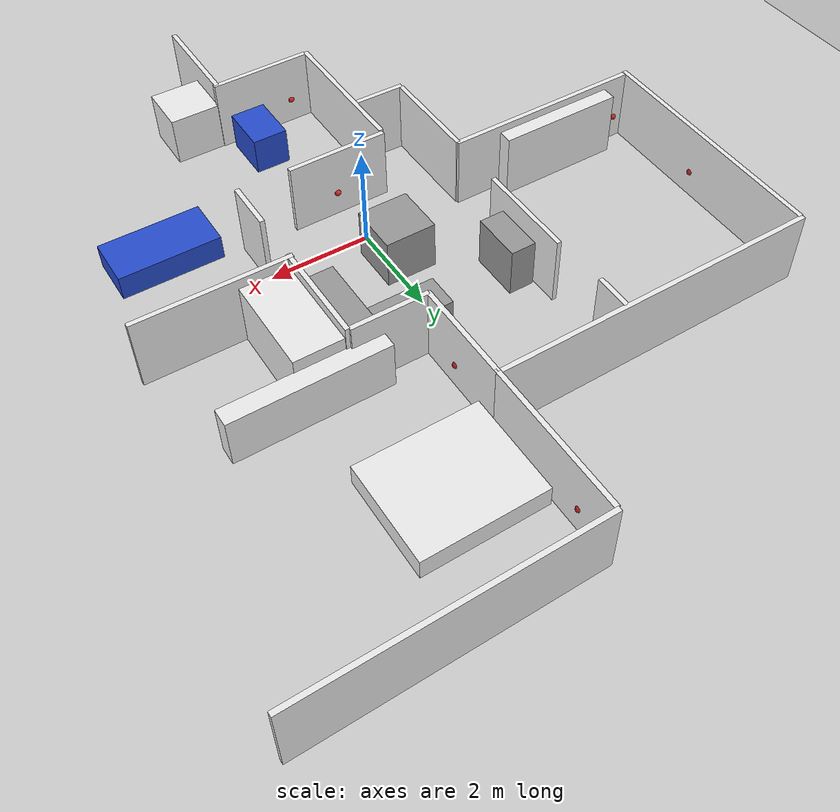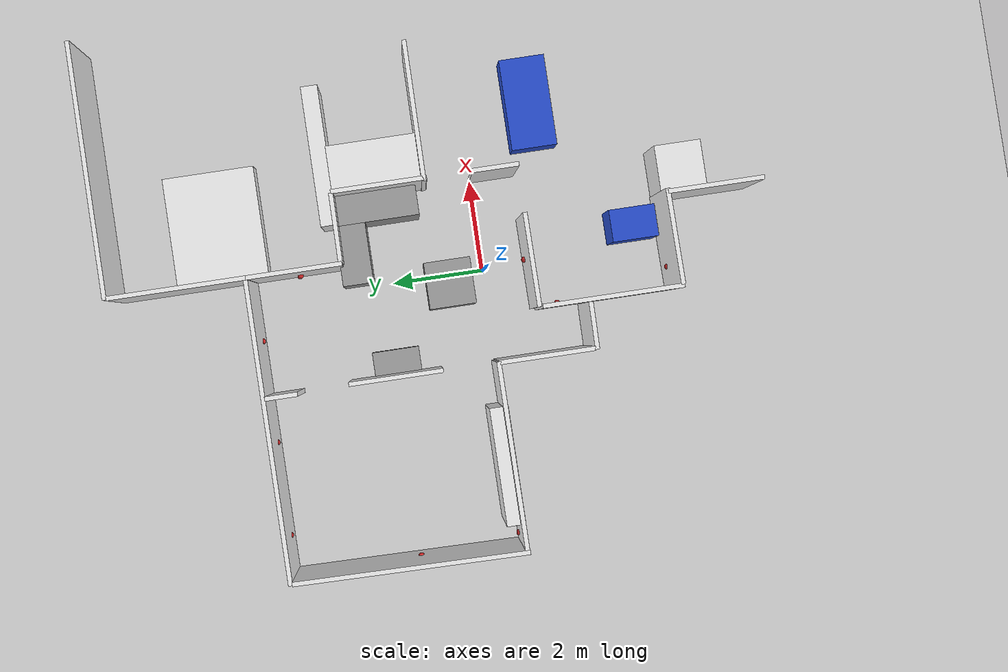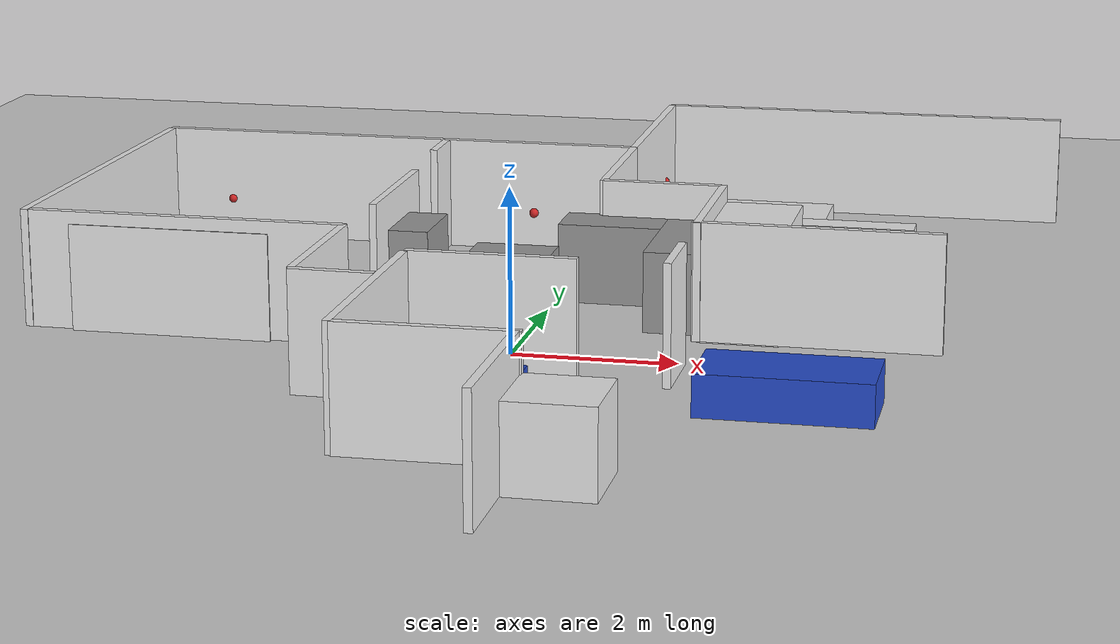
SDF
<sdf version="1.6">
 <world name="default">
  <model name="ground_plane">
   <static>1</static>
   <link name="link">
    <collision name="collision">
     <geometry><plane><normal>0 0 1</normal><size>100 100</size></plane></geometry>
     <surface>
      <contact><collide_bitmask>65535</collide_bitmask></contact>
      <friction><ode><mu>100</mu><mu2>50</mu2></ode></friction>
     </surface>
    </collision>
    <visual name="visual">
     <cast_shadows>0</cast_shadows>
     <geometry><plane><normal>0 0 1</normal><size>100 100</size></plane></geometry>
     <material>
      <script><uri>file://media/materials/scripts/gazebo.material</uri><name>Gazebo/Grey</name></script>
     </material>
    </visual>
   </link>
  </model>
  <model name="unit_box">
   <static>1</static>
   <pose>-2.01274 2.22224 0.725943 0 -0 0</pose>
   <link name="link">
    <inertial>
     <mass>1</mass>
     <inertia>
      <ixx>0.166667</ixx>
      <ixy>0</ixy>
      <ixz>0</ixz>
      <iyy>0.166667</iyy>
      <iyz>0</iyz>
      <izz>0.166667</izz>
     </inertia>
    </inertial>
    <collision name="collision"><geometry><box><size>0.09 2 1.4</size></box></geometry></collision>
    <visual name="visual">
     <geometry><box><size>0.09 2 1.4</size></box></geometry>
     <material>
      <script><name>Gazebo/White</name><uri>file://media/materials/scripts/gazebo.material</uri></script>
     </material>
    </visual>
   </link>
  </model>
  <model name="unit_box_clone">
   <static>1</static>
   <pose>-5.97626 2.48866 0.727989 -0.000551 -1e-05 -0.014328</pose>
   <link name="link">
    <inertial>
     <mass>1</mass>
     <inertia>
      <ixx>0.166667</ixx>
      <ixy>0</ixy>
      <ixz>0</ixz>
      <iyy>0.166667</iyy>
      <iyz>0</iyz>
      <izz>0.166667</izz>
     </inertia>
    </inertial>
    <collision name="collision"><geometry><box><size>0.094944 5 1.45871</size></box></geometry></collision>
    <visual name="visual">
     <geometry><box><size>0.094944 5 1.45871</size></box></geometry>
     <material>
      <script><name>Gazebo/White</name><uri>file://media/materials/scripts/gazebo.material</uri></script>
     </material>
    </visual>
   </link>
  </model>
  <model name="unit_box_clone_0">
   <static>1</static>
   <pose>-2.71625 5.03036 0.725943 0 0 -1.56846</pose>
   <link name="link">
    <inertial>
     <mass>1</mass>
     <inertia>
      <ixx>0.166667</ixx>
      <ixy>0</ixy>
      <ixz>0</ixz>
      <iyy>0.166667</iyy>
      <iyz>0</iyz>
      <izz>0.166667</izz>
     </inertia>
    </inertial>
    <collision name="collision"><geometry><box><size>0.094944 6.5 1.45871</size></box></geometry></collision>
    <visual name="visual">
     <geometry><box><size>0.094944 6.5 1.45871</size></box></geometry>
     <material>
      <script><name>Gazebo/White</name><uri>file://media/materials/scripts/gazebo.material</uri></script>
     </material>
    </visual>
   </link>
  </model>
  <model name="unit_box_clone_1">
   <static>1</static>
   <pose>-2.05331 4.65271 0.725943 0 -0 0</pose>
   <link name="link">
    <inertial>
     <mass>1</mass>
     <inertia>
      <ixx>0.166667</ixx>
      <ixy>0</ixy>
      <ixz>0</ixz>
      <iyy>0.166667</iyy>
      <iyz>0</iyz>
      <izz>0.166667</izz>
     </inertia>
    </inertial>
    <collision name="collision"><geometry><box><size>0.094944 0.7 1.45871</size></box></geometry></collision>
    <visual name="visual">
     <geometry><box><size>0.094944 0.7 1.45871</size></box></geometry>
     <material>
      <script><name>Gazebo/White</name><uri>file://media/materials/scripts/gazebo.material</uri></script>
     </material>
    </visual>
   </link>
  </model>
  <model name="unit_box_clone_2">
   <static>1</static>
   <pose>-2.02561 -0.972572 0.725943 0 -0 0</pose>
   <link name="link">
    <inertial>
     <mass>1</mass>
     <inertia>
      <ixx>0.166667</ixx>
      <ixy>0</ixy>
      <ixz>0</ixz>
      <iyy>0.166667</iyy>
      <iyz>0</iyz>
      <izz>0.166667</izz>
     </inertia>
    </inertial>
    <collision name="collision"><geometry><box><size>0.094944 2.03907 1.45871</size></box></geometry></collision>
    <visual name="visual">
     <geometry><box><size>0.094944 2.03907 1.45871</size></box></geometry>
     <material>
      <script><name>Gazebo/White</name><uri>file://media/materials/scripts/gazebo.material</uri></script>
     </material>
    </visual>
   </link>
  </model>
  <model name="unit_box_clone_3">
   <static>1</static>
   <pose>-4.00392 0.049547 0.725943 0 0 -1.56859</pose>
   <link name="link">
    <inertial>
     <mass>1</mass>
     <inertia>
      <ixx>0.166667</ixx>
      <ixy>0</ixy>
      <ixz>0</ixz>
      <iyy>0.166667</iyy>
      <iyz>0</iyz>
      <izz>0.166667</izz>
     </inertia>
    </inertial>
    <collision name="collision"><geometry><box><size>0.094944 4 1.45871</size></box></geometry></collision>
    <visual name="visual">
     <geometry><box><size>0.094944 4 1.45871</size></box></geometry>
     <material>
      <script><name>Gazebo/White</name><uri>file://media/materials/scripts/gazebo.material</uri></script>
     </material>
    </visual>
   </link>
  </model>
  <model name="unit_box_clone_4">
   <static>1</static>
   <pose>0.507787 4.01039 0.725943 0 -0 0</pose>
   <link name="link">
    <inertial>
     <mass>1</mass>
     <inertia>
      <ixx>0.166667</ixx>
      <ixy>0</ixy>
      <ixz>0</ixz>
      <iyy>0.166667</iyy>
      <iyz>0</iyz>
      <izz>0.166667</izz>
     </inertia>
    </inertial>
    <collision name="collision"><geometry><box><size>0.094944 2.03907 1.45871</size></box></geometry></collision>
    <visual name="visual">
     <geometry><box><size>0.094944 2.03907 1.45871</size></box></geometry>
     <material>
      <script><name>Gazebo/White</name><uri>file://media/materials/scripts/gazebo.material</uri></script>
     </material>
    </visual>
   </link>
  </model>
  <model name="unit_box_clone_5">
   <static>1</static>
   <pose>2.03063 1.99169 0.725943 0 -0 0</pose>
   <link name="link">
    <inertial>
     <mass>1</mass>
     <inertia>
      <ixx>0.166667</ixx>
      <ixy>0</ixy>
      <ixz>0</ixz>
      <iyy>0.166667</iyy>
      <iyz>0</iyz>
      <izz>0.166667</izz>
     </inertia>
    </inertial>
    <collision name="collision"><geometry><box><size>0.094944 2.03907 1.45871</size></box></geometry></collision>
    <visual name="visual">
     <geometry><box><size>0.094944 2.03907 1.45871</size></box></geometry>
     <material>
      <script><name>Gazebo/White</name><uri>file://media/materials/scripts/gazebo.material</uri></script>
     </material>
    </visual>
   </link>
  </model>
  <model name="unit_box_clone_7">
   <static>1</static>
   <pose>-0.997003 -2.53445 0.725943 0 -0 0</pose>
   <link name="link">
    <inertial>
     <mass>1</mass>
     <inertia>
      <ixx>0.166667</ixx>
      <ixy>0</ixy>
      <ixz>0</ixz>
      <iyy>0.166667</iyy>
      <iyz>0</iyz>
      <izz>0.166667</izz>
     </inertia>
    </inertial>
    <collision name="collision"><geometry><box><size>0.094944 3 1.45871</size></box></geometry></collision>
    <visual name="visual">
     <geometry><box><size>0.094944 3 1.45871</size></box></geometry>
     <material>
      <script><name>Gazebo/White</name><uri>file://media/materials/scripts/gazebo.material</uri></script>
     </material>
    </visual>
   </link>
  </model>
  <model name="unit_box_clone_9">
   <static>1</static>
   <pose>0.0 -0.957752 0.725943 0 0 -1.56472</pose>
   <link name="link">
    <inertial>
     <mass>1</mass>
     <inertia>
      <ixx>0.166667</ixx>
      <ixy>0</ixy>
      <ixz>0</ixz>
      <iyy>0.166667</iyy>
      <iyz>0</iyz>
      <izz>0.166667</izz>
     </inertia>
    </inertial>
    <collision name="collision"><geometry><box><size>0.094944 2 1.45871</size></box></geometry></collision>
    <visual name="visual">
     <geometry><box><size>0.094944 2 1.45871</size></box></geometry>
     <material>
      <script><name>Gazebo/White</name><uri>file://media/materials/scripts/gazebo.material</uri></script>
     </material>
    </visual>
   </link>
  </model>
  <model name="unit_box_clone_10">
   <static>1</static>
   <pose>1.24886 3.01388 0.725943 0 0 -1.57691</pose>
   <link name="link">
    <inertial>
     <mass>1</mass>
     <inertia>
      <ixx>0.166667</ixx>
      <ixy>0</ixy>
      <ixz>0</ixz>
      <iyy>0.166667</iyy>
      <iyz>0</iyz>
      <izz>0.166667</izz>
     </inertia>
    </inertial>
    <collision name="collision"><geometry><box><size>0.094944 1.5 1.45871</size></box></geometry></collision>
    <visual name="visual">
     <geometry><box><size>0.094944 1.5 1.45871</size></box></geometry>
     <material>
      <script><name>Gazebo/White</name><uri>file://media/materials/scripts/gazebo.material</uri></script>
     </material>
    </visual>
   </link>
  </model>
  <model name="unit_box_clone_12">
   <static>1</static>
   <pose>2.02806 -0.485736 0.725943 0 -0 0</pose>
   <link name="link">
    <inertial>
     <mass>1</mass>
     <inertia>
      <ixx>0.166667</ixx>
      <ixy>0</ixy>
      <ixz>0</ixz>
      <iyy>0.166667</iyy>
      <iyz>0</iyz>
      <izz>0.166667</izz>
     </inertia>
    </inertial>
    <collision name="collision"><geometry><box><size>0.094944 1 1.45871</size></box></geometry></collision>
    <visual name="visual">
     <geometry><box><size>0.094944 1 1.45871</size></box></geometry>
     <material>
      <script><name>Gazebo/White</name><uri>file://media/materials/scripts/gazebo.material</uri></script>
     </material>
    </visual>
   </link>
  </model>
  <model name="unit_box_clone_16">
   <static>1</static>
   <pose>0.507237 6.4744 0.725943 0 -0 0</pose>
   <link name="link">
    <inertial>
     <mass>1</mass>
     <inertia>
      <ixx>0.166667</ixx>
      <ixy>0</ixy>
      <ixz>0</ixz>
      <iyy>0.166667</iyy>
      <iyz>0</iyz>
      <izz>0.166667</izz>
     </inertia>
    </inertial>
    <collision name="collision"><geometry><box><size>0.094944 3 1.45871</size></box></geometry></collision>
    <visual name="visual">
     <geometry><box><size>0.094944 3 1.45871</size></box></geometry>
     <material>
      <script><name>Gazebo/White</name><uri>file://media/materials/scripts/gazebo.material</uri></script>
     </material>
    </visual>
   </link>
  </model>
  <model name="unit_box_clone_17">
   <static>1</static>
   <pose>3.4642 1.02883 0.725943 0 0 -1.5764</pose>
   <link name="link">
    <inertial>
     <mass>1</mass>
     <inertia>
      <ixx>0.166667</ixx>
      <ixy>0</ixy>
      <ixz>0</ixz>
      <iyy>0.166667</iyy>
      <iyz>0</iyz>
      <izz>0.166667</izz>
     </inertia>
    </inertial>
    <collision name="collision"><geometry><box><size>0.094944 3 1.45871</size></box></geometry></collision>
    <visual name="visual">
     <geometry><box><size>0.094944 3 1.45871</size></box></geometry>
     <material>
      <script><name>Gazebo/White</name><uri>file://media/materials/scripts/gazebo.material</uri></script>
     </material>
    </visual>
   </link>
  </model>
  <model name="unit_box_clone_20">
   <static>1</static>
   <pose>0.995276 -5.00617 0.725943 0 -0 0</pose>
   <link name="link">
    <inertial>
     <mass>1</mass>
     <inertia>
      <ixx>0.166667</ixx>
      <ixy>0</ixy>
      <ixz>0</ixz>
      <iyy>0.166667</iyy>
      <iyz>0</iyz>
      <izz>0.166667</izz>
     </inertia>
    </inertial>
    <collision name="collision"><geometry><box><size>0.094944 2.03907 1.45871</size></box></geometry></collision>
    <visual name="visual">
     <geometry><box><size>0.094944 2.03907 1.45871</size></box></geometry>
     <material>
      <script><name>Gazebo/White</name><uri>file://media/materials/scripts/gazebo.material</uri></script>
     </material>
    </visual>
   </link>
  </model>
  <model name="unit_box_clone_21">
   <static>1</static>
   <pose>0.043019 -3.99656 0.725943 0 -0 1.58174</pose>
   <link name="link">
    <inertial>
     <mass>1</mass>
     <inertia>
      <ixx>0.166667</ixx>
      <ixy>0</ixy>
      <ixz>0</ixz>
      <iyy>0.166667</iyy>
      <iyz>0</iyz>
      <izz>0.166667</izz>
     </inertia>
    </inertial>
    <collision name="collision"><geometry><box><size>0.094944 2.03907 1.45871</size></box></geometry></collision>
    <visual name="visual">
     <geometry><box><size>0.094944 2.03907 1.45871</size></box></geometry>
     <material>
      <script><name>Gazebo/White</name><uri>file://media/materials/scripts/gazebo.material</uri></script>
     </material>
    </visual>
   </link>
  </model>
  <model name="unit_box_clone_29">
   <static>1</static>
   <pose>3.23563 8.01577 0.725943 0 0 -1.56893</pose>
   <link name="link">
    <inertial>
     <mass>1</mass>
     <inertia>
      <ixx>0.166667</ixx>
      <ixy>0</ixy>
      <ixz>0</ixz>
      <iyy>0.166667</iyy>
      <iyz>0</iyz>
      <izz>0.166667</izz>
     </inertia>
    </inertial>
    <collision name="collision"><geometry><box><size>0.094944 5.5 1.45871</size></box></geometry></collision>
    <visual name="visual">
     <geometry><box><size>0.094944 5.5 1.45871</size></box></geometry>
     <material>
      <script><name>Gazebo/White</name><uri>file://media/materials/scripts/gazebo.material</uri></script>
     </material>
    </visual>
   </link>
  </model>
  <model name="unit_box_0">
   <static>1</static>
   <pose>1.54832 -4.45098 0.5 0 -0 0</pose>
   <link name="link">
    <inertial>
     <mass>1</mass>
     <inertia>
      <ixx>0.166667</ixx>
      <ixy>0</ixy>
      <ixz>0</ixz>
      <iyy>0.166667</iyy>
      <iyz>0</iyz>
      <izz>0.166667</izz>
     </inertia>
    </inertial>
    <collision name="collision"><geometry><box><size>1 1 1.5</size></box></geometry></collision>
    <visual name="visual">
     <geometry><box><size>1 1 1</size></box></geometry>
     <material>
      <script><name>Gazebo/White</name><uri>file://media/materials/scripts/gazebo.material</uri></script>
     </material>
    </visual>
   </link>
  </model>
  <model name="unit_box_clone_38">
   <static>1</static>
   <pose>-1.55209 -2.03003 0.725943 0 0 -1.58432</pose>
   <link name="link">
    <inertial>
     <mass>1</mass>
     <inertia>
      <ixx>0.166667</ixx>
      <ixy>0</ixy>
      <ixz>0</ixz>
      <iyy>0.166667</iyy>
      <iyz>0</iyz>
      <izz>0.166667</izz>
     </inertia>
    </inertial>
    <collision name="collision"><geometry><box><size>0.094944 1 1.45871</size></box></geometry></collision>
    <visual name="visual">
     <geometry><box><size>0.094944 1 1.45871</size></box></geometry>
     <material>
      <script><name>Gazebo/White</name><uri>file://media/materials/scripts/gazebo.material</uri></script>
     </material>
    </visual>
   </link>
  </model>
  <model name="couch_3">
   <static>1</static>
   <pose>3.47668 -1.49763 0.25 0 -0 0</pose>
   <link name="link">
    <inertial>
     <mass>1</mass>
     <inertia>
      <ixx>0.166667</ixx>
      <ixy>0</ixy>
      <ixz>0</ixz>
      <iyy>0.166667</iyy>
      <iyz>0</iyz>
      <izz>0.166667</izz>
     </inertia>
    </inertial>
    <collision name="collision"><geometry><box><size>2 1 0.5</size></box></geometry></collision>
    <visual name="visual">
     <geometry><box><size>2 1 0.5</size></box></geometry>
     <material>
      <script><name>Gazebo/Blue</name><uri>file://media/materials/scripts/gazebo.material</uri></script>
     </material>
    </visual>
   </link>
  </model>
  <model name="unit_box_4">
   <static>1</static>
   <pose>-4.20332 0.183525 0.5 0 -0 0</pose>
   <link name="link">
    <inertial>
     <mass>1</mass>
     <inertia>
      <ixx>0.166667</ixx>
      <ixy>0</ixy>
      <ixz>0</ixz>
      <iyy>0.166667</iyy>
      <iyz>0</iyz>
      <izz>0.166667</izz>
     </inertia>
    </inertial>
    <collision name="collision"><geometry><box><size>2.5 0.4 1.6</size></box></geometry></collision>
    <visual name="visual">
     <geometry><box><size>2.5 0.4 1.6</size></box></geometry>
     <material>
      <script><name>Gazebo/White</name><uri>file://media/materials/scripts/gazebo.material</uri></script>
     </material>
    </visual>
   </link>
  </model>
  <model name="unit_box_5">
   <static>1</static>
   <pose>1.80194 5.68128 0.196993 0 -0 0</pose>
   <link name="link">
    <inertial>
     <mass>1</mass>
     <inertia>
      <ixx>0.166667</ixx>
      <ixy>0</ixy>
      <ixz>0</ixz>
      <iyy>0.166667</iyy>
      <iyz>0</iyz>
      <izz>0.166667</izz>
     </inertia>
    </inertial>
    <collision name="collision"><geometry><box><size>2.394523 2.02089 0.43699</size></box></geometry></collision>
    <visual name="visual">
     <geometry><box><size>2.394523 2.02089 0.43699</size></box></geometry>
     <material>
      <script><name>Gazebo/White</name><uri>file://media/materials/scripts/gazebo.material</uri></script>
     </material>
    </visual>
   </link>
  </model>
  <model name="unit_box_6">
   <static>1</static>
   <pose>2.89897 3.16764 0.5 0 -0 0</pose>
   <link name="link">
    <inertial>
     <mass>1</mass>
     <inertia>
      <ixx>0.166667</ixx>
      <ixy>0</ixy>
      <ixz>0</ixz>
      <iyy>0.166667</iyy>
      <iyz>0</iyz>
      <izz>0.166667</izz>
     </inertia>
    </inertial>
    <collision name="collision"><geometry><box><size>3.036 0.362792 1</size></box></geometry></collision>
    <visual name="visual">
     <geometry><box><size>3.036 0.362792 1</size></box></geometry>
     <material>
      <script><name>Gazebo/White</name><uri>file://media/materials/scripts/gazebo.material</uri></script>
     </material>
    </visual>
   </link>
  </model>
  <model name="kitchen_3">
   <static>1</static>
   <pose>0.744246 2.73224 0.5 0 -0 0</pose>
   <link name="link">
    <inertial>
     <mass>1</mass>
     <inertia>
      <ixx>0.166667</ixx>
      <ixy>0</ixy>
      <ixz>0</ixz>
      <iyy>0.166667</iyy>
      <iyz>0</iyz>
      <izz>0.166667</izz>
     </inertia>
    </inertial>
    <collision name="collision"><geometry><box><size>1.396533 0.65587 1</size></box></geometry></collision>
    <visual name="visual">
     <geometry><box><size>1.396533 0.65587 1</size></box></geometry>
     <material>
      <script><name>Gazebo/Grey</name><uri>file://media/materials/scripts/gazebo.material</uri></script>
     </material>
    </visual>
   </link>
  </model>
  <model name="kitchen_4">
   <static>1</static>
   <pose>1.72856 2.1 0.5 0 -0 0</pose>
   <link name="link">
    <inertial>
     <mass>1</mass>
     <inertia>
      <ixx>0.166667</ixx>
      <ixy>0</ixy>
      <ixz>0</ixz>
      <iyy>0.166667</iyy>
      <iyz>0</iyz>
      <izz>0.166667</izz>
     </inertia>
    </inertial>
    <collision name="collision"><geometry><box><size>0.77604 1.745952 1</size></box></geometry></collision>
    <visual name="visual">
     <geometry><box><size>0.77604 1.745952 1</size></box></geometry>
     <material>
      <script><name>Gazebo/Grey</name><uri>file://media/materials/scripts/gazebo.material</uri></script>
     </material>
    </visual>
   </link>
  </model>
  <model name="kitchen_2">
   <static>1</static>
   <pose>-0.209041 0.797462 0.5 0 -0 0</pose>
   <link name="link">
    <inertial>
     <mass>1</mass>
     <inertia>
      <ixx>0.166667</ixx>
      <ixy>0</ixy>
      <ixz>0</ixz>
      <iyy>0.166667</iyy>
      <iyz>0</iyz>
      <izz>0.166667</izz>
     </inertia>
    </inertial>
    <collision name="collision"><geometry><box><size>1 1 1</size></box></geometry></collision>
    <visual name="visual">
     <geometry><box><size>1 1 1</size></box></geometry>
     <material>
      <script><name>Gazebo/Grey</name><uri>file://media/materials/scripts/gazebo.material</uri></script>
     </material>
    </visual>
   </link>
  </model>
  <model name="unit_sphere">
   <static>1</static>
   <pose>-3.06575 4.99782 0.5 0 -0 0</pose>
   <link name="link">
    <inertial>
     <mass>1</mass>
     <inertia><ixx>0.1</ixx><ixy>0</ixy><ixz>0</ixz><iyy>0.1</iyy><iyz>0</iyz><izz>0.1</izz></inertia>
    </inertial>
    <collision name="collision"><geometry><sphere><radius>0.0628965</radius></sphere></geometry></collision>
    <visual name="visual">
     <geometry><sphere><radius>0.0628965</radius></sphere></geometry>
     <material>
      <script><name>Gazebo/Red</name><uri>file://media/materials/scripts/gazebo.material</uri></script>
     </material>
    </visual>
   </link>
  </model>
  <model name="unit_sphere_clone">
   <static>1</static>
   <pose>-5.09573 5.00236 0.5 0 -0 0</pose>
   <link name="link">
    <inertial>
     <mass>1</mass>
     <inertia><ixx>0.1</ixx><ixy>0</ixy><ixz>0</ixz><iyy>0.1</iyy><iyz>0</iyz><izz>0.1</izz></inertia>
    </inertial>
    <collision name="collision"><geometry><sphere><radius>0.0628967</radius></sphere></geometry></collision>
    <visual name="visual">
     <geometry><sphere><radius>0.0628967</radius></sphere></geometry>
     <material>
      <script><name>Gazebo/Red</name><uri>file://media/materials/scripts/gazebo.material</uri></script>
     </material>
    </visual>
   </link>
  </model>
  <model name="unit_sphere_clone_0">
   <static>1</static>
   <pose>-0.849644 4.99071 0.5 0 -0 0</pose>
   <link name="link">
    <inertial>
     <mass>1</mass>
     <inertia><ixx>0.1</ixx><ixy>0</ixy><ixz>0</ixz><iyy>0.1</iyy><iyz>0</iyz><izz>0.1</izz></inertia>
    </inertial>
    <collision name="collision"><geometry><sphere><radius>0.0628967</radius></sphere></geometry></collision>
    <visual name="visual">
     <geometry><sphere><radius>0.0628967</radius></sphere></geometry>
     <material>
      <script><name>Gazebo/Red</name><uri>file://media/materials/scripts/gazebo.material</uri></script>
     </material>
    </visual>
   </link>
  </model>
  <model name="unit_sphere_clone_1">
   <static>1</static>
   <pose>0.439211 3.97689 0.5 0 -0 0</pose>
   <link name="link">
    <inertial>
     <mass>1</mass>
     <inertia><ixx>0.1</ixx><ixy>0</ixy><ixz>0</ixz><iyy>0.1</iyy><iyz>0</iyz><izz>0.1</izz></inertia>
    </inertial>
    <collision name="collision"><geometry><sphere><radius>0.0628967</radius></sphere></geometry></collision>
    <visual name="visual">
     <geometry><sphere><radius>0.0628967</radius></sphere></geometry>
     <material>
      <script><name>Gazebo/Red</name><uri>file://media/materials/scripts/gazebo.material</uri></script>
     </material>
    </visual>
   </link>
  </model>
  <model name="unit_sphere_clone_2">
   <static>1</static>
   <pose>-5.7641 0.087166 0.5 0 -0 0</pose>
   <link name="link">
    <inertial>
     <mass>1</mass>
     <inertia><ixx>0.1</ixx><ixy>0</ixy><ixz>0</ixz><iyy>0.1</iyy><iyz>0</iyz><izz>0.1</izz></inertia>
    </inertial>
    <collision name="collision"><geometry><sphere><radius>0.0628967</radius></sphere></geometry></collision>
    <visual name="visual">
     <geometry><sphere><radius>0.0628967</radius></sphere></geometry>
     <material>
      <script><name>Gazebo/Red</name><uri>file://media/materials/scripts/gazebo.material</uri></script>
     </material>
    </visual>
   </link>
  </model>
  <model name="unit_sphere_clone_3">
   <static>1</static>
   <pose>-5.94927 2.26127 0.5 0 -0 0</pose>
   <link name="link">
    <inertial>
     <mass>1</mass>
     <inertia><ixx>0.1</ixx><ixy>0</ixy><ixz>0</ixz><iyy>0.1</iyy><iyz>0</iyz><izz>0.1</izz></inertia>
    </inertial>
    <collision name="collision"><geometry><sphere><radius>0.0628967</radius></sphere></geometry></collision>
    <visual name="visual">
     <geometry><sphere><radius>0.0628967</radius></sphere></geometry>
     <material>
      <script><name>Gazebo/Red</name><uri>file://media/materials/scripts/gazebo.material</uri></script>
     </material>
    </visual>
   </link>
  </model>
  <model name="unit_sphere_clone_4">
   <static>1</static>
   <pose>0.077091 -0.902036 0.5 0 -0 0</pose>
   <link name="link">
    <inertial>
     <mass>1</mass>
     <inertia><ixx>0.1</ixx><ixy>0</ixy><ixz>0</ixz><iyy>0.1</iyy><iyz>0</iyz><izz>0.1</izz></inertia>
    </inertial>
    <collision name="collision"><geometry><sphere><radius>0.0628967</radius></sphere></geometry></collision>
    <visual name="visual">
     <geometry><sphere><radius>0.0628967</radius></sphere></geometry>
     <material>
      <script><name>Gazebo/Red</name><uri>file://media/materials/scripts/gazebo.material</uri></script>
     </material>
    </visual>
   </link>
  </model>
  <model name="unit_sphere_clone_5">
   <static>1</static>
   <pose>-0.534563 -3.96665 0.5 0 -0 0</pose>
   <link name="link">
    <inertial>
     <mass>1</mass>
     <inertia><ixx>0.1</ixx><ixy>0</ixy><ixz>0</ixz><iyy>0.1</iyy><iyz>0</iyz><izz>0.1</izz></inertia>
    </inertial>
    <collision name="collision"><geometry><sphere><radius>0.0628967</radius></sphere></geometry></collision>
    <visual name="visual">
     <geometry><sphere><radius>0.0628967</radius></sphere></geometry>
     <material>
      <script><name>Gazebo/Red</name><uri>file://media/materials/scripts/gazebo.material</uri></script>
     </material>
    </visual>
   </link>
  </model>
  <model name="unit_sphere_clone_6">
   <static>1</static>
   <pose>-0.959267 -1.47175 0.5 0 -0 0</pose>
   <link name="link">
    <inertial>
     <mass>1</mass>
     <inertia><ixx>0.1</ixx><ixy>0</ixy><ixz>0</ixz><iyy>0.1</iyy><iyz>0</iyz><izz>0.1</izz></inertia>
    </inertial>
    <collision name="collision"><geometry><sphere><radius>0.0628967</radius></sphere></geometry></collision>
    <visual name="visual">
     <geometry><sphere><radius>0.0628967</radius></sphere></geometry>
     <material>
      <script><name>Gazebo/Red</name><uri>file://media/materials/scripts/gazebo.material</uri></script>
     </material>
    </visual>
   </link>
  </model>
  <model name="unit_sphere_clone_9">
   <static>1</static>
   <pose>0.534087 7.24562 0.5 0 -0 0</pose>
   <link name="link">
    <inertial>
     <mass>1</mass>
     <inertia><ixx>0.1</ixx><ixy>0</ixy><ixz>0</ixz><iyy>0.1</iyy><iyz>0</iyz><izz>0.1</izz></inertia>
    </inertial>
    <collision name="collision"><geometry><sphere><radius>0.0628967</radius></sphere></geometry></collision>
    <visual name="visual">
     <geometry><sphere><radius>0.0628967</radius></sphere></geometry>
     <material>
      <script><name>Gazebo/Red</name><uri>file://media/materials/scripts/gazebo.material</uri></script>
     </material>
    </visual>
   </link>
  </model>
  <model name="unit_sphere_clone_10">
   <static>1</static>
   <pose>0.537643 3.89466 0.5 0 -0 0</pose>
   <link name="link">
    <inertial>
     <mass>1</mass>
     <inertia><ixx>0.1</ixx><ixy>0</ixy><ixz>0</ixz><iyy>0.1</iyy><iyz>0</iyz><izz>0.1</izz></inertia>
    </inertial>
    <collision name="collision"><geometry><sphere><radius>0.0628967</radius></sphere></geometry></collision>
    <visual name="visual">
     <geometry><sphere><radius>0.0628967</radius></sphere></geometry>
     <material>
      <script><name>Gazebo/Red</name><uri>file://media/materials/scripts/gazebo.material</uri></script>
     </material>
    </visual>
   </link>
  </model>
  <model name="kitchen_1">
   <static>1</static>
   <pose>-1.69253 2.16012 0.5 0 -0 0</pose>
   <link name="link">
    <inertial>
     <mass>1</mass>
     <inertia>
      <ixx>0.166667</ixx>
      <ixy>0</ixy>
      <ixz>0</ixz>
      <iyy>0.166667</iyy>
      <iyz>0</iyz>
      <izz>0.166667</izz>
     </inertia>
    </inertial>
    <collision name="collision"><geometry><box><size>0.5 0.999999 1</size></box></geometry></collision>
    <visual name="visual">
     <geometry><box><size>0.5 0.999999 1</size></box></geometry>
     <material>
      <script><name>Gazebo/Grey</name><uri>file://media/materials/scripts/gazebo.material</uri></script>
     </material>
    </visual>
   </link>
  </model>
  <model name="unit_box_12">
   <static>1</static>
   <pose>0.501663 -3.33633 0.337968 0 -0 0</pose>
   <link name="link">
    <inertial>
     <mass>1</mass>
     <inertia>
      <ixx>0.166667</ixx>
      <ixy>0</ixy>
      <ixz>0</ixz>
      <iyy>0.166667</iyy>
      <iyz>0</iyz>
      <izz>0.166667</izz>
     </inertia>
    </inertial>
    <collision name="collision"><geometry><box><size>0.7 1  0.8</size></box></geometry></collision>
    <visual name="visual">
     <geometry><box><size>0.7 1 0.8</size></box></geometry>
     <material>
      <script><name>Gazebo/Blue</name><uri>file://media/materials/scripts/gazebo.material</uri></script>
     </material>
    </visual>
   </link>
  </model>
  <model name="unit_box_13">
   <static>1</static>
   <pose>2.53182 1.99543 0.5 0 -0 0</pose>
   <link name="link">
    <inertial>
     <mass>1</mass>
     <inertia>
      <ixx>0.166667</ixx>
      <ixy>0</ixy>
      <ixz>0</ixz>
      <iyy>0.166667</iyy>
      <iyz>0</iyz>
      <izz>0.166667</izz>
     </inertia>
    </inertial>
    <collision name="collision"><geometry><box><size>0.999997 2 1.5</size></box></geometry></collision>
    <visual name="visual">
     <geometry><box><size>0.999997 2 1.5</size></box></geometry>
     <material>
      <script><name>Gazebo/White</name><uri>file://media/materials/scripts/gazebo.material</uri></script>
     </material>
    </visual>
   </link>
  </model>
 </world>
</sdf>
